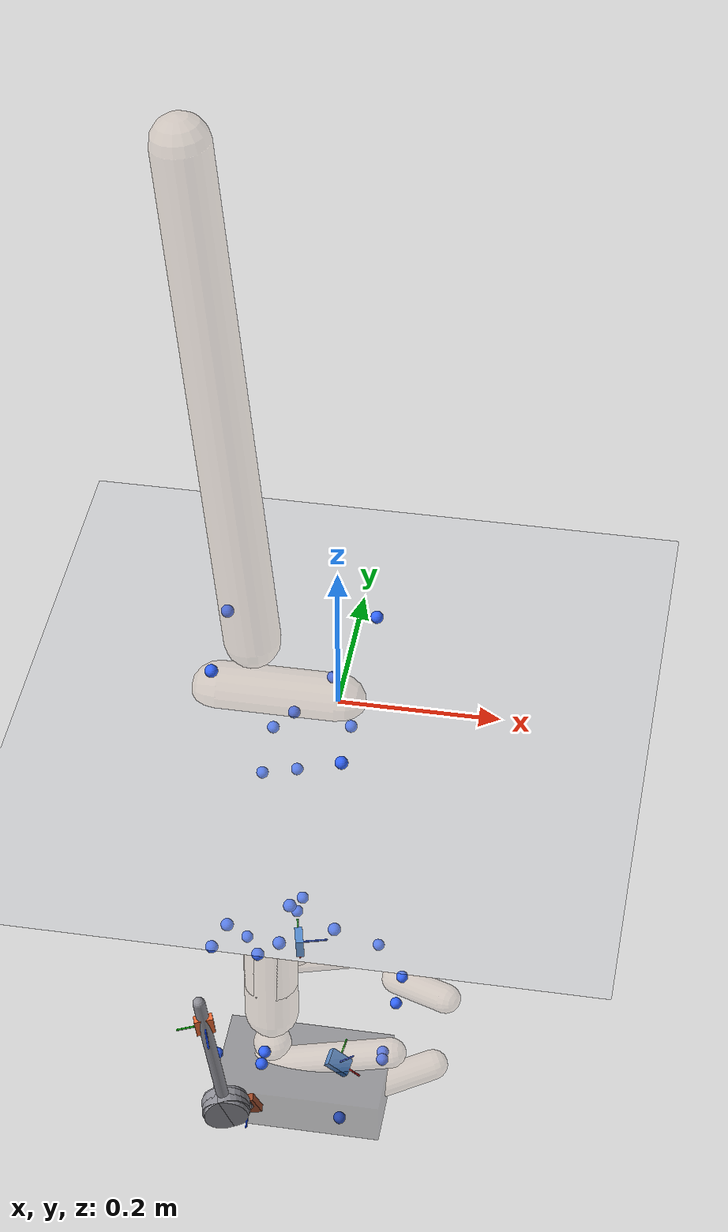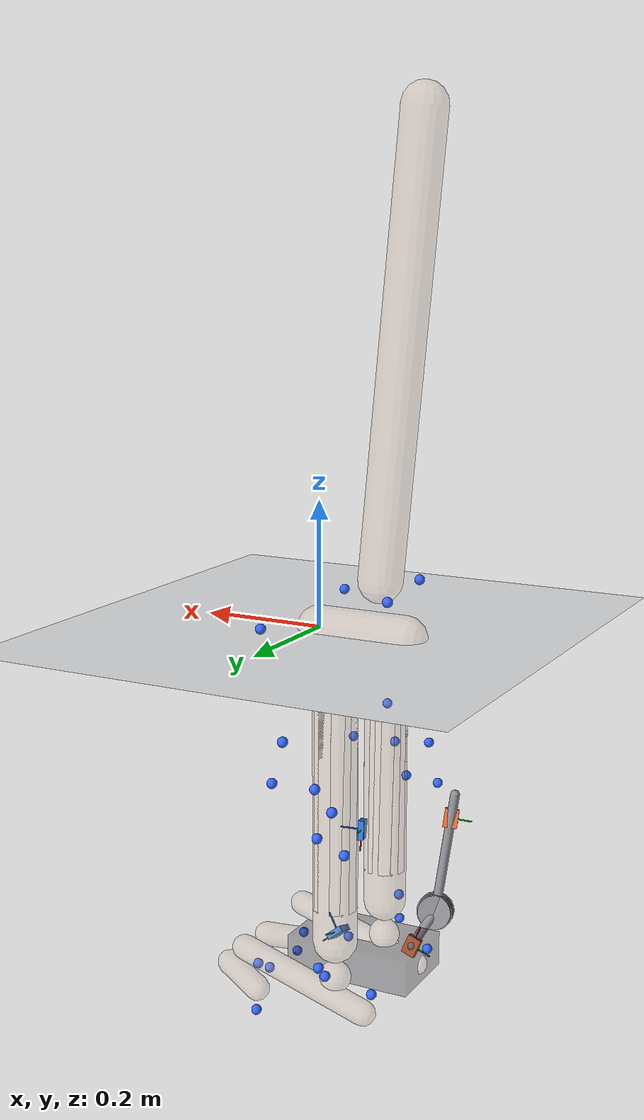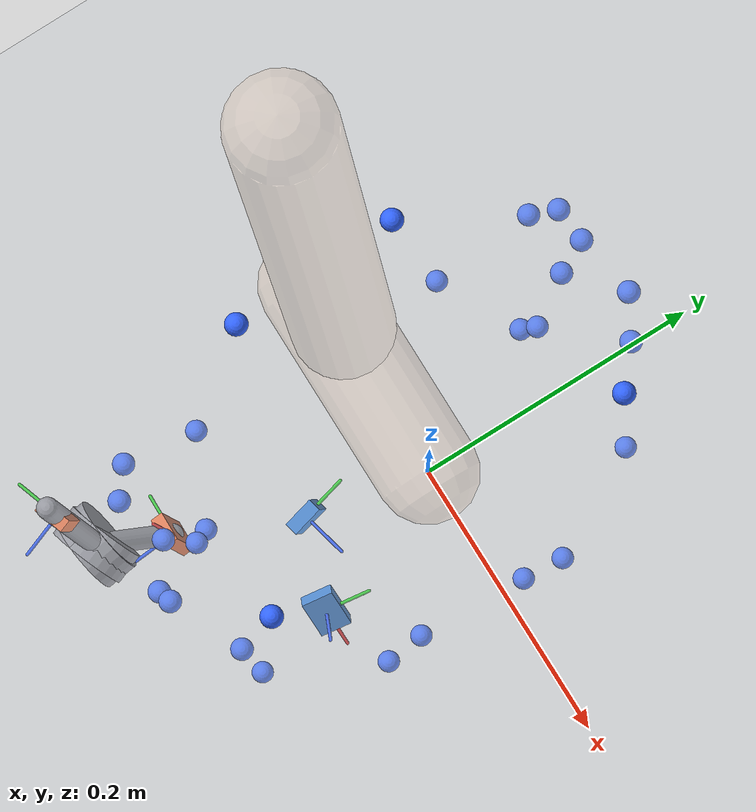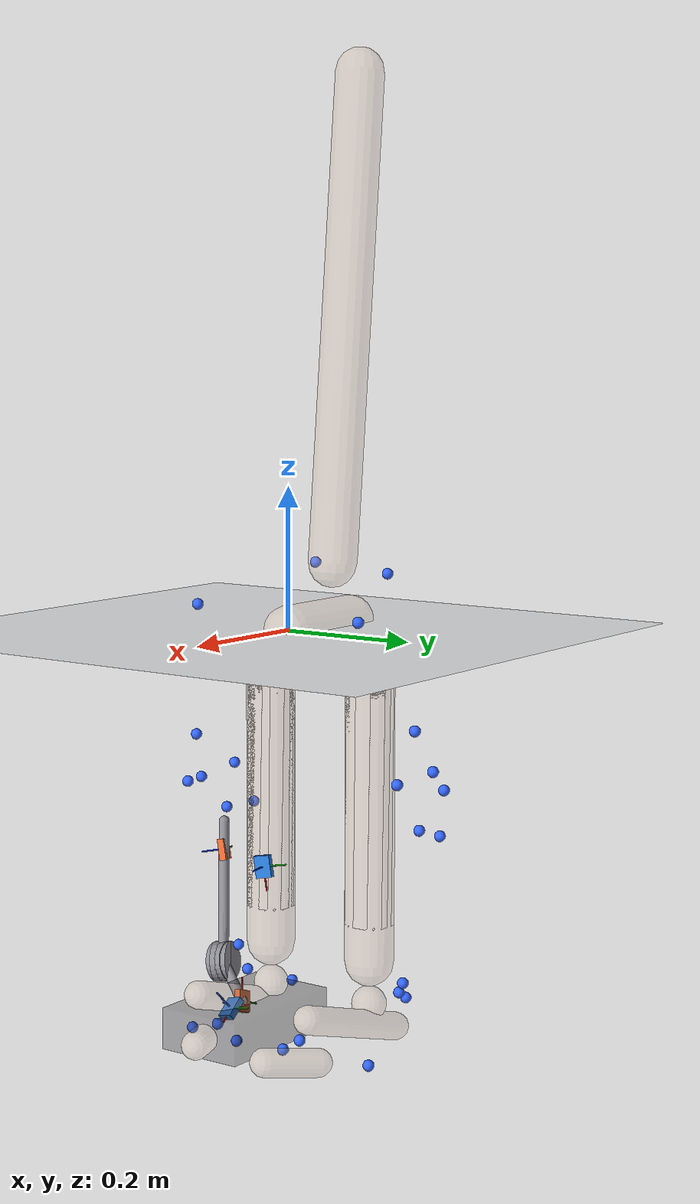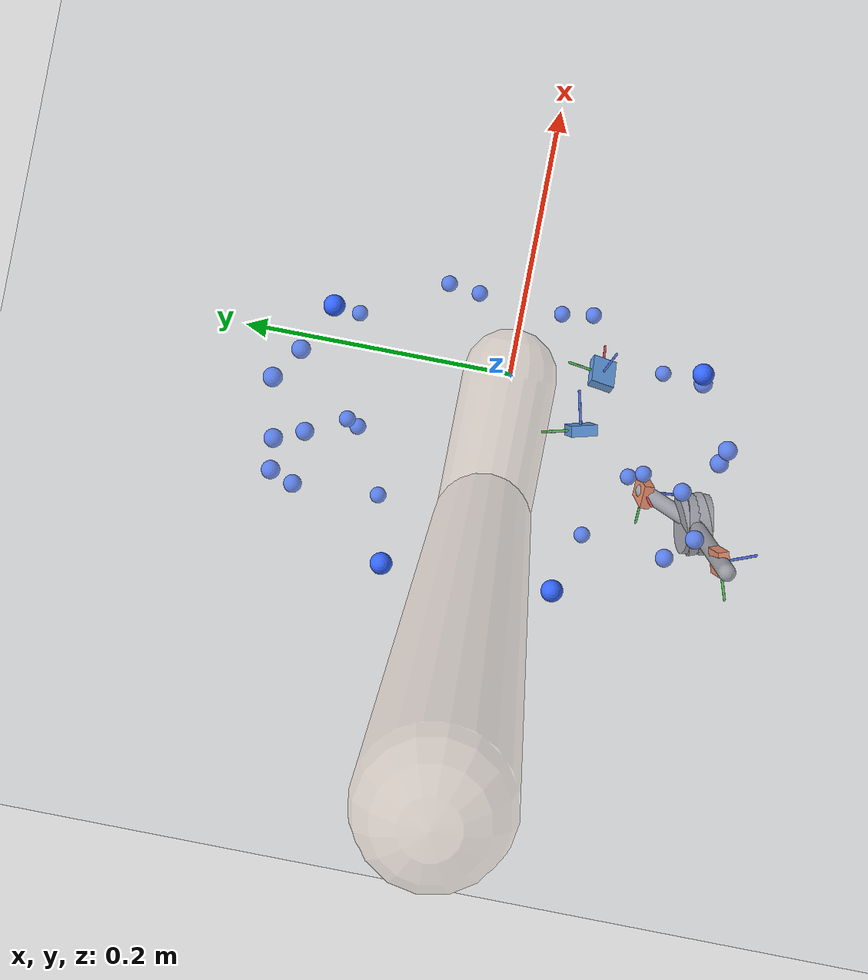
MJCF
<mujoco model="AB06">
  <compiler angle="radian" autolimits="true"/>
  <option timestep="0.005" gravity="0 0 -9.81"><flag contact="disable"/></option>
  <visual><global offwidth="1600" offheight="1200"/>
    <headlight ambient="0.55 0.55 0.55" diffuse="0.6 0.6 0.6"/></visual>
  <default><joint limited="false" damping="0"/><geom contype="0" conaffinity="0"/></default>
  <asset>
    <texture name="grid" type="2d" builtin="checker" rgb1="0.75 0.77 0.8" rgb2="0.85 0.87 0.9" width="512" height="512"/>
    <material name="grid" texture="grid" texrepeat="2 2" texuniform="true"/>
    <material name="skin" rgba="0.85 0.72 0.62 0.28"/>
  </asset>
  <worldbody>
    <light pos="0 0 4" dir="0 0 -1"/>
    <geom name="floor" type="plane" size="0 0 0.05" material="grid"/>
    <body name="pelvis" pos="0 0 0" quat="1 0 0 0">
      <joint name="pelvis_tx" type="slide" axis="1 0 0"/>
      <joint name="pelvis_ty" type="slide" axis="0 0 1"/>
      <joint name="pelvis_tz" type="slide" axis="0 -1 0"/>
      <joint name="pelvis_tilt" type="hinge" axis="0 -1 0"/>
      <joint name="pelvis_list" type="hinge" axis="1 0 0"/>
      <joint name="pelvis_rotation" type="hinge" axis="0 0 1"/>
      <inertial pos="-0.07372656 0 0" mass="12.2367" diaginertia="0.12236747 0.12236747 0.12236747"/>
      <geom type="capsule" fromto="0 0 0 -0.14745312 0 0" size="0.035" material="skin" mass="0"/>
      <site name="m_R_ASIS" pos="0.027854749 -0.13877781 0.029340818" size="0.008" rgba="0.2 0.4 1 1" group="2"/>
      <site name="m_L_ASIS" pos="0.025819645 0.1363009 0.02485285" size="0.008" rgba="0.2 0.4 1 1" group="2"/>
      <site name="m_L_PSIS" pos="-0.14893131 0.064937575 0.06978299" size="0.008" rgba="0.2 0.4 1 1" group="2"/>
      <site name="m_R_PSIS" pos="-0.14399251 -0.058138647 0.079055027" size="0.008" rgba="0.2 0.4 1 1" group="2"/>
      <body name="femur_r" pos="-0.07372656 -0.087074508 -0.068929641" quat="1 0 0 0">
        <joint name="hip_flexion_r" type="hinge" axis="0 -1 0"/>
        <joint name="hip_adduction_r" type="hinge" axis="1 0 0"/>
        <joint name="hip_rotation_r" type="hinge" axis="0 0 1"/>
        <inertial pos="0 0 -0.174591" mass="9.6645" diaginertia="0.096645049 0.096645049 0.096645049"/>
        <geom type="capsule" fromto="0 0 0 0 0 -0.34918199" size="0.035" material="skin" mass="0"/>
        <site name="m_R_Thigh_Upper" pos="0.045811523 -0.10073196 -0.10226908" size="0.008" rgba="0.2 0.4 1 1" group="2"/>
        <site name="m_R_Thigh_Front" pos="0.096388207 -0.075696202 -0.16033469" size="0.008" rgba="0.2 0.4 1 1" group="2"/>
        <site name="m_R_Thigh_Rear" pos="0.032320847 -0.10280851 -0.16778529" size="0.008" rgba="0.2 0.4 1 1" group="2"/>
        <site name="m_R_Knee_Lat" pos="0.0014195441 -0.058915581 -0.419902" size="0.008" rgba="0.2 0.4 1 1" group="2"/>
        <body name="tibia_r" pos="0 0 0" quat="1 0 0 0">
<geom name="gt_shank_axis_x" type="capsule" size="0.0012" fromto="0.03510 0.01350 -0.28460 0.03529 0.01949 -0.31908" rgba="1 0.1 0.1 1" contype="0" conaffinity="0" mass="0"/>
<geom name="gt_shank_axis_y" type="capsule" size="0.0012" fromto="0.03510 0.01350 -0.28460 0.02677 0.04700 -0.27883" rgba="0.1 0.8 0.1 1" contype="0" conaffinity="0" mass="0"/>
<geom name="gt_shank_axis_z" type="capsule" size="0.0012" fromto="0.03510 0.01350 -0.28460 0.06909 0.02168 -0.28299" rgba="0.1 0.3 1 1" contype="0" conaffinity="0" mass="0"/>
<geom name="exo_shank_axis_x" type="capsule" size="0.0012" fromto="-0.05904 -0.13374 -0.29858 -0.06085 -0.14129 -0.26445" rgba="1 0.1 0.1 1" contype="0" conaffinity="0" mass="0"/>
<geom name="exo_shank_axis_y" type="capsule" size="0.0012" fromto="-0.05904 -0.13374 -0.29858 -0.09199 -0.14478 -0.30276" rgba="0.1 0.8 0.1 1" contype="0" conaffinity="0" mass="0"/>
<geom name="exo_shank_axis_z" type="capsule" size="0.0012" fromto="-0.05904 -0.13374 -0.29858 -0.04738 -0.16609 -0.30511" rgba="0.1 0.3 1 1" contype="0" conaffinity="0" mass="0"/>
<geom name="encoder_shank" type="cylinder" size="0.03 0.012" fromto="-0.03458 -0.13107 -0.46670 -0.04302 -0.10873 -0.46430" rgba="0.55 0.55 0.58 1" contype="0" conaffinity="0" mass="0"/>
<geom name="strut_shank" type="capsule" size="0.008" fromto="-0.03880 -0.11990 -0.46550 -0.06410 -0.13720 -0.25685" rgba="0.55 0.55 0.58 1" contype="0" conaffinity="0" mass="0"/>
          <joint name="knee_r_translation1" type="slide" axis="1 0 0"/>
          <joint name="knee_r_translation2" type="slide" axis="0 0 1"/>
          <joint name="knee_angle_r" type="hinge" axis="0 -1 0"/>
          <inertial pos="0 0 -0.20210518" mass="3.85223" diaginertia="0.038522321 0.038522321 0.038522321"/>
          <geom type="capsule" fromto="0 0 0 0 0 -0.40421036" size="0.035" material="skin" mass="0"/>
          <site name="m_R_Shank_Upper" pos="-0.034423126 -0.093363182 -0.15639366" size="0.008" rgba="0.2 0.4 1 1" group="2"/>
          <site name="m_R_Shank_Front" pos="0.00035935059 -0.080800173 -0.21565864" size="0.008" rgba="0.2 0.4 1 1" group="2"/>
          <site name="m_R_Shank_Rear" pos="-0.059069742 -0.076391094 -0.21735671" size="0.008" rgba="0.2 0.4 1 1" group="2"/>
          <site name="m_R_Ankle_Lat" pos="-0.0054319929 -0.04745014 -0.45657552" size="0.008" rgba="0.2 0.4 1 1" group="2"/>
          <site name="gt_shank_imu" type="box" size="0.016 0.012 0.005" pos="0.0351 0.0135 -0.2846" quat="0.70863141 -0.024270379 0.69022391 0.14437256" rgba="0.16 0.47 0.84 1" group="1"/>
          <site name="exo_shank_imu" type="box" size="0.016 0.012 0.005" pos="-0.059042 -0.133744 -0.298579" quat="0.33408016 0.60211195 -0.48039249 0.54320779" rgba="0.92 0.41 0.20 1" group="1"/>
          <body name="talus_r" pos="0 0 -0.4654806" quat="1 0 0 0">
            <joint name="ankle_angle_r" type="hinge" axis="-0.10501355 -0.97912632 -0.17402245"/>
            <inertial pos="0 0 0" mass="0.103904" diaginertia="0.0010390377 0.0010390377 0.0010390377"/>
            <geom type="sphere" size="0.025" material="skin" mass="0"/>
            <body name="calcn_r" pos="-0.05279416 -0.0085735031 -0.045411421" quat="1 0 0 0">
<geom name="gt_foot_axis_x" type="capsule" size="0.0012" fromto="0.14130 0.00420 0.02660 0.16870 0.00541 0.00486" rgba="1 0.1 0.1 1" contype="0" conaffinity="0" mass="0"/>
<geom name="gt_foot_axis_y" type="capsule" size="0.0012" fromto="0.14130 0.00420 0.02660 0.14615 0.03793 0.03458" rgba="0.1 0.8 0.1 1" contype="0" conaffinity="0" mass="0"/>
<geom name="gt_foot_axis_z" type="capsule" size="0.0012" fromto="0.14130 0.00420 0.02660 0.16253 -0.00506 0.05284" rgba="0.1 0.3 1 1" contype="0" conaffinity="0" mass="0"/>
<geom name="exo_foot_axis_x" type="capsule" size="0.0012" fromto="0.03390 -0.06011 -0.00192 0.02225 -0.06866 0.02996" rgba="1 0.1 0.1 1" contype="0" conaffinity="0" mass="0"/>
<geom name="exo_foot_axis_y" type="capsule" size="0.0012" fromto="0.03390 -0.06011 -0.00192 0.00096 -0.05926 -0.01373" rgba="0.1 0.8 0.1 1" contype="0" conaffinity="0" mass="0"/>
<geom name="exo_foot_axis_z" type="capsule" size="0.0012" fromto="0.03390 -0.06011 -0.00192 0.03601 -0.09404 -0.01025" rgba="0.1 0.3 1 1" contype="0" conaffinity="0" mass="0"/>
<geom name="encoder_foot" type="cylinder" size="0.03 0.012" fromto="0.01536 -0.12302 0.04321 0.01264 -0.09958 0.04759" rgba="0.55 0.55 0.58 1" contype="0" conaffinity="0" mass="0"/>
<geom name="strut_foot" type="capsule" size="0.008" fromto="0.01400 -0.11130 0.04540 0.03390 -0.06011 -0.00192" rgba="0.55 0.55 0.58 1" contype="0" conaffinity="0" mass="0"/>
<geom name="shoe" type="box" pos="0.09725 -0.00426 -0.00011" size="0.10915 0.06573 0.03000" rgba="0.15 0.15 0.18 0.35" contype="0" conaffinity="0" mass="0"/>
              <joint name="subtalar_angle_r" type="hinge" axis="0.78717961 0.12094949 0.60474746"/>
              <inertial pos="0.10557781 0 0.031673342" mass="1.2988" diaginertia="0.012987971 0.012987971 0.012987971"/>
              <geom type="capsule" fromto="0 0 0 0.21115561 0 0.063346684" size="0.02" material="skin" mass="0"/>
              <site name="m_R_Heel" pos="-0.018906522 -0.0065209078 0.027134617" size="0.008" rgba="0.2 0.4 1 1" group="2"/>
              <site name="m_R_Toe_Lat" pos="0.15320158 -0.057721901 -0.010109992" size="0.008" rgba="0.2 0.4 1 1" group="2"/>
              <site name="m_R_Toe_Med" pos="0.19219709 0.053735367 0.0021870993" size="0.008" rgba="0.2 0.4 1 1" group="2"/>
              <site name="m_R_Toe_Tip" pos="0.19640197 0.023192682 0.022142635" size="0.008" rgba="0.2 0.4 1 1" group="2"/>
              <site name="gt_foot_imu" type="box" size="0.016 0.012 0.005" pos="0.1413 0.0042 0.0266" quat="0.93492311 0.13178269 0.328294 -0.0278416" rgba="0.16 0.47 0.84 1" group="1"/>
              <site name="exo_foot_imu" type="box" size="0.016 0.012 0.005" pos="0.033902 -0.060112 -0.001921" quat="-0.33674315 -0.46926739 0.63146573 -0.51734243" rgba="0.92 0.41 0.20 1" group="1"/>
              <body name="toes_r" pos="0.18877312 -0.0011402403 -0.0021115561" quat="1 0 0 0">
                <joint name="mtp_angle_r" type="hinge" axis="-0.5809544 -0.81393611 0"/>
                <inertial pos="0.036529921 0.018476116 0.0063346684" mass="0.225056" diaginertia="0.0022505556 0.0022505556 0.0022505556"/>
                <geom type="capsule" fromto="0 0 0 0.073059842 0.036952232 0.012669337" size="0.02" material="skin" mass="0"/>
              </body>
            </body>
          </body>
        </body>
      </body>
      <body name="femur_l" pos="-0.07372656 0.087074508 -0.068929641" quat="1 0 0 0">
        <joint name="hip_flexion_l" type="hinge" axis="0 -1 0"/>
        <joint name="hip_adduction_l" type="hinge" axis="-1 0 0"/>
        <joint name="hip_rotation_l" type="hinge" axis="0 0 -1"/>
        <inertial pos="0 0 -0.174591" mass="9.6645" diaginertia="0.096645049 0.096645049 0.096645049"/>
        <geom type="capsule" fromto="0 0 0 0 0 -0.34918199" size="0.035" material="skin" mass="0"/>
        <site name="m_L_Thigh_Upper" pos="0.035039299 0.098625854 -0.058245235" size="0.008" rgba="0.2 0.4 1 1" group="2"/>
        <site name="m_L_Thigh_Front" pos="0.060365593 0.086992548 -0.12989462" size="0.008" rgba="0.2 0.4 1 1" group="2"/>
        <site name="m_L_Thigh_Rear" pos="-0.016339378 0.094992677 -0.12364532" size="0.008" rgba="0.2 0.4 1 1" group="2"/>
        <site name="m_L_Knee_Lat" pos="-0.0011496983 0.056660061 -0.4263916" size="0.008" rgba="0.2 0.4 1 1" group="2"/>
        <body name="tibia_l" pos="0 0 0" quat="1 0 0 0">
          <joint name="knee_l_translation1" type="slide" axis="1 0 0"/>
          <joint name="knee_l_translation2" type="slide" axis="0 0 1"/>
          <joint name="knee_angle_l" type="hinge" axis="0 -1 0"/>
          <inertial pos="0 0 -0.20210518" mass="3.85223" diaginertia="0.038522321 0.038522321 0.038522321"/>
          <geom type="capsule" fromto="0 0 0 0 0 -0.40421036" size="0.035" material="skin" mass="0"/>
          <site name="m_L_Shank_Upper" pos="-0.044614918 0.095068893 -0.15446153" size="0.008" rgba="0.2 0.4 1 1" group="2"/>
          <site name="m_L_Shank_Front" pos="-0.010032442 0.077017382 -0.20756402" size="0.008" rgba="0.2 0.4 1 1" group="2"/>
          <site name="m_L_Shank_Rear" pos="-0.057695936 0.080358344 -0.22413387" size="0.008" rgba="0.2 0.4 1 1" group="2"/>
          <site name="m_L_Ankle_Lat" pos="-0.007053604 0.046413424 -0.44320175" size="0.008" rgba="0.2 0.4 1 1" group="2"/>
          <body name="talus_l" pos="0 0 -0.4654806" quat="1 0 0 0">
            <joint name="ankle_angle_l" type="hinge" axis="0.10501355 -0.97912632 0.17402245"/>
            <inertial pos="0 0 0" mass="0.103904" diaginertia="0.0010390377 0.0010390377 0.0010390377"/>
            <geom type="sphere" size="0.025" material="skin" mass="0"/>
            <body name="calcn_l" pos="-0.05279416 0.0085735031 -0.045411421" quat="1 0 0 0">
              <joint name="subtalar_angle_l" type="hinge" axis="-0.78717961 0.12094949 -0.60474746"/>
              <inertial pos="0.10557781 0 0.031673342" mass="1.2988" diaginertia="0.012987971 0.012987971 0.012987971"/>
              <geom type="capsule" fromto="0 0 0 0.21115561 0 0.063346684" size="0.02" material="skin" mass="0"/>
              <site name="m_L_Heel" pos="-0.018003608 0.0069674716 0.038525804" size="0.008" rgba="0.2 0.4 1 1" group="2"/>
              <site name="m_L_Toe_Lat" pos="0.15456552 0.06132007 -0.0033592924" size="0.008" rgba="0.2 0.4 1 1" group="2"/>
              <site name="m_L_Toe_Med" pos="0.19670561 -0.052859949 0.0078909798" size="0.008" rgba="0.2 0.4 1 1" group="2"/>
              <site name="m_L_Toe_Tip" pos="0.19992346 -0.021978393 0.027672546" size="0.008" rgba="0.2 0.4 1 1" group="2"/>
              <body name="toes_l" pos="0.18877312 0.0011402403 -0.0021115561" quat="1 0 0 0">
                <joint name="mtp_angle_l" type="hinge" axis="0.5809544 -0.81393611 0"/>
                <inertial pos="0.036529921 -0.018476116 0.0063346684" mass="0.225056" diaginertia="0.0022505556 0.0022505556 0.0022505556"/>
                <geom type="capsule" fromto="0 0 0 0.073059842 -0.036952232 0.012669337" size="0.02" material="skin" mass="0"/>
              </body>
            </body>
          </body>
        </body>
      </body>
      <body name="torso" pos="-0.10501081 0 0.084988891" quat="1 0 0 0">
        <joint name="lumbar_extension" type="hinge" axis="0 -1 0"/>
        <joint name="lumbar_bending" type="hinge" axis="1 0 0"/>
        <joint name="lumbar_rotation" type="hinge" axis="0 0 1"/>
        <inertial pos="-0.032448506 0 0.3461174" mass="35.5731" diaginertia="0.35573117 0.35573117 0.35573117"/>
        <geom type="capsule" fromto="0 0 0 -0.064897012 0 0.69223479" size="0.035" material="skin" mass="0"/>
      </body>
    </body>
  </worldbody>
  <sensor>
<accelerometer name="gt_foot_imu_acc" site="gt_foot_imu"/>
<gyro name="gt_foot_imu_gyr" site="gt_foot_imu"/>
<accelerometer name="exo_foot_imu_acc" site="exo_foot_imu"/>
<gyro name="exo_foot_imu_gyr" site="exo_foot_imu"/>
<accelerometer name="gt_shank_imu_acc" site="gt_shank_imu"/>
<gyro name="gt_shank_imu_gyr" site="gt_shank_imu"/>
<accelerometer name="exo_shank_imu_acc" site="exo_shank_imu"/>
<gyro name="exo_shank_imu_gyr" site="exo_shank_imu"/>
</sensor>
</mujoco>
